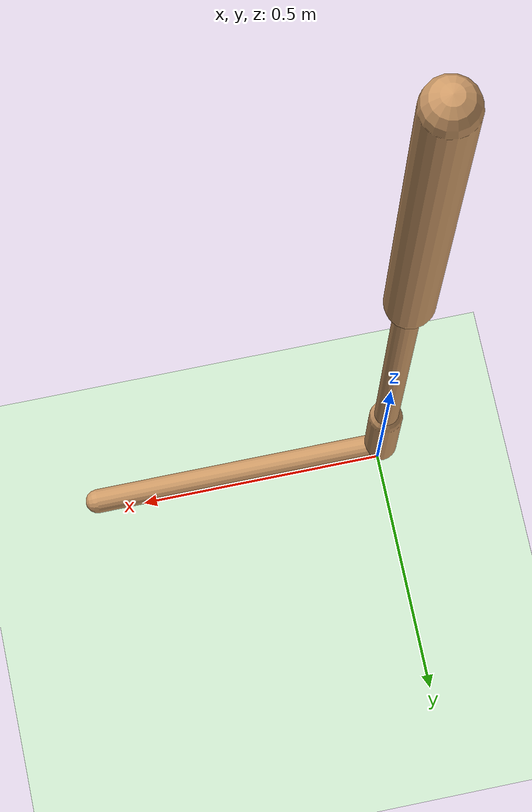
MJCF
<mujoco model="walker2d">
  <compiler angle="degree" inertiafromgeom="true" />
  <default>
    <joint armature="0.01" damping=".1" limited="true" />
    <geom conaffinity="0" condim="3" contype="1" density="1000" friction=".7 .1 .1" rgba="0.8 0.6 .4 1" />
  </default>
  <option integrator="RK4" timestep="0.002" />
  <worldbody>
    <light cutoff="100" diffuse="1 1 1" dir="-0 0 -1.3" directional="true" exponent="1" pos="0 0 1.3" specular=".1 .1 .1" />
    <geom conaffinity="1" condim="3" name="floor" pos="0 0 0" rgba="0.8 0.9 0.8 1" size="40 40 40" type="plane" material="MatPlane" />
    <body name="torso" pos="0 0 1.4382894098758698">
      <camera name="track" mode="trackcom" pos="0 -5 -1.25" xyaxes="1 0 0 0 0 1" />
      <joint armature="0" axis="1 0 0" damping="0" limited="false" name="rootx" pos="0 0 -1.25" stiffness="0" type="slide" />
      <joint armature="0" axis="0 0 1" damping="0" limited="false" name="rootz" pos="0 0 -1.25" ref="1.25" stiffness="0" type="slide" />
      <joint armature="0" axis="0 1 0" damping="0" limited="false" name="rooty" pos="0 0 0" stiffness="0" type="hinge" />
      <geom friction="0.9" name="torso_geom" size="0.04428539797663689 0.4025190770626068" type="capsule" />
      <body name="thigh" pos="0 0 -0.4025190770626068">
        <joint axis="0 -1 0" name="thigh_joint" pos="0 0 0" range="-150 0" type="hinge" />
        <site name="torso_thigh_site" pos="0 0 0" size="0.01" type="sphere" rgba="1 0 0 0.5" />
        <geom friction="0.9" pos="0 0 -0.35899806022644043" name="thigh_geom" size="0.02392578311264515 0.35899806022644043" type="capsule" />
        <body name="leg" pos="0 0 -0.8268832266330719">
          <joint axis="0 -1 0" name="leg_joint" pos="0 0 0.10888710618019104" range="-150 0" type="hinge" />
          <site name="thigh_leg_site" pos="0 0 0.25" size="0.01" type="sphere" rgba="1 0 0 0.5" />
          <geom friction="0.9" name="leg_geom" size="0.03334774076938629 0.10888710618019104" type="capsule" />
          <body name="foot" pos="0.5919497609138489 0 -0.20888710618019105">
            <joint axis="0 -1 0" name="foot_joint" pos="-0.5919497609138489 0 0.1" range="-45 45" type="hinge" />
            <site name="leg_foot_site" pos="-0.2 0 0.1" size="0.01" type="sphere" rgba="1 0 0 0.5" />
            <geom friction="0.9" pos="-0.29597488045692444 0 0.1" quat="0.70710678118654757 0 -0.70710678118654746 0" name="foot_geom" size="0.024435149505734444 0.29597488045692444" type="capsule" />
          </body>
        </body>
      </body>

      <body name="thigh_left" pos="0 0 -0.4025190770626068">
        <joint axis="0 -1 0" name="thigh_left_joint" pos="0 0 0" range="-150 0" type="hinge" />
        <site name="torso_thigh_left_site" pos="0 0 0" size="0.01" type="sphere" rgba="1 0 0 0.5" />
        <geom friction="0.9" name="thigh_left_geom" rgba=".7 .3 .6 1" size="0.02392578311264515 0.35899806022644043" pos="0 0 -0.35899806022644043" type="capsule" />
        <body name="leg_left" pos="0 0 -0.8268832266330719">
          <joint axis="0 -1 0" name="leg_left_joint" pos="0 0 0.10888710618019104" range="-150 0" type="hinge" />
          <site name="thigh_leg_left_site" pos="0 0 0.25" size="0.01" type="sphere" rgba="1 0 0 0.5" />
          <geom friction="0.9" name="leg_left_geom" rgba=".7 .3 .6 1" size="0.03334774076938629 0.10888710618019104" type="capsule" />
          <body name="foot_left" pos="0.5919497609138489 0 -0.20888710618019105">
            <joint axis="0 -1 0" name="foot_left_joint" pos="-0.5919497609138489 0 0.1" range="-45 45" type="hinge" />
            <site name="leg_foot_left_site" pos="-0.2 0 0.1" size="0.01" type="sphere" rgba="1 0 0 0.5" />
            <geom friction="1.9" name="foot_left_geom" rgba=".7 .3 .6 1" size="0.024435149505734444 0.29597488045692444" pos="-0.29597488045692444 0 0.1" type="capsule" quat="0.70710678118654757 0 -0.70710678118654746 0" />
          </body>
        </body>
      </body>
    </body>
  </worldbody>
  <actuator>

    <motor ctrllimited="true" ctrlrange="-1.0 1.0" gear="36.53439317540666" joint="thigh_joint" />
    <motor ctrllimited="true" ctrlrange="-1.0 1.0" gear="30.27257043424664" joint="leg_joint" />
    <motor ctrllimited="true" ctrlrange="-1.0 1.0" gear="49.088793054210775" joint="foot_joint" />
    <motor ctrllimited="true" ctrlrange="-1.0 1.0" gear="36.53439317540666" joint="thigh_left_joint" />
    <motor ctrllimited="true" ctrlrange="-1.0 1.0" gear="30.27257043424664" joint="leg_left_joint" />
    <motor ctrllimited="true" ctrlrange="-1.0 1.0" gear="49.088793054210775" joint="foot_left_joint" />

  </actuator>
    <asset>
        <texture type="skybox" builtin="gradient" rgb1=".4 .5 .6" rgb2="0 0 0" width="100" height="100" />
        <texture builtin="flat" height="1278" mark="cross" markrgb="1 1 1" name="texgeom" random="0.01" rgb1="0.8 0.6 0.4" rgb2="0.8 0.6 0.4" type="cube" width="127" />
        <texture builtin="checker" height="100" name="texplane" rgb1="0 0 0" rgb2="0.8 0.8 0.8" type="2d" width="100" />
        <material name="MatPlane" reflectance="0.5" shininess="1" specular="1" texrepeat="60 60" texture="texplane" />
        <material name="geom" texture="texgeom" texuniform="true" />
    </asset>

  <sensor>
    <force site="torso_thigh_site" name="torso_thigh_sensor" />
    <force site="thigh_leg_site" name="thigh_leg_sensor" />
    <force site="leg_foot_site" name="leg_foot_sensor" />
    <force site="torso_thigh_left_site" name="torso_thigh_left_sensor" />
    <force site="thigh_leg_left_site" name="thigh_leg_left_sensor" />
    <force site="leg_foot_left_site" name="leg_foot_left_sensor" />
  </sensor>
</mujoco>
